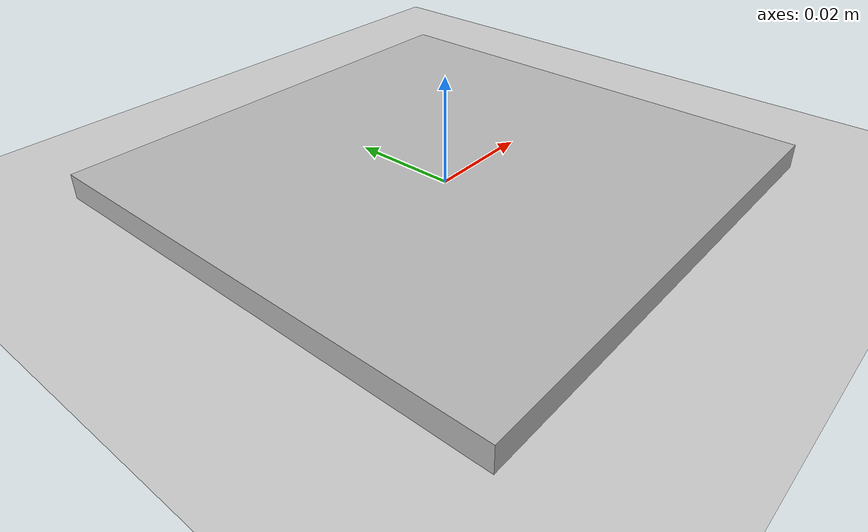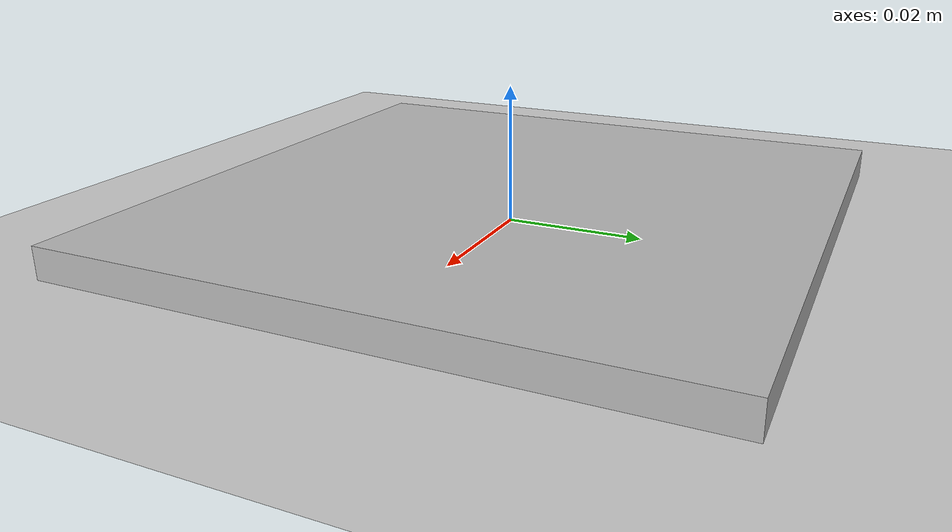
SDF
<?xml version="1.0"?>
<sdf version="1.4">
  <world name="default">
    <include>
      <uri>model://ground_plane</uri>
    </include>
    <include>
      <uri>model://sun</uri>
    </include>
    <model name="my_mesh">
      <pose>0 0 0  0 0 0</pose>
      <static>true</static>
      <link name="body">
        <visual name="visual">
          <geometry>
            <mesh><uri>$(find aruco_planning)/worlds/artag1xfor.dae</uri></mesh>
          </geometry>
        </visual>
      </link>
    </model>
  </world>
</sdf>
